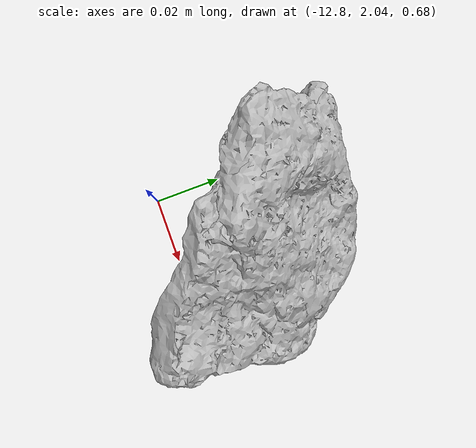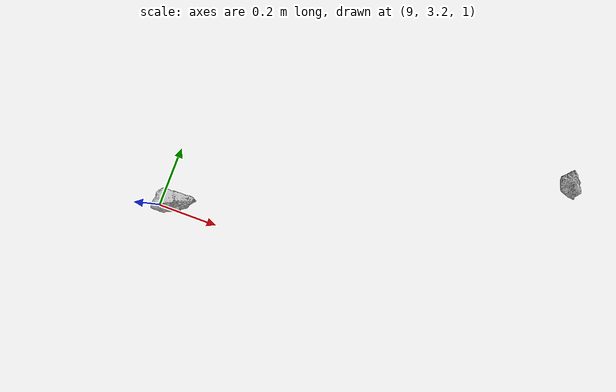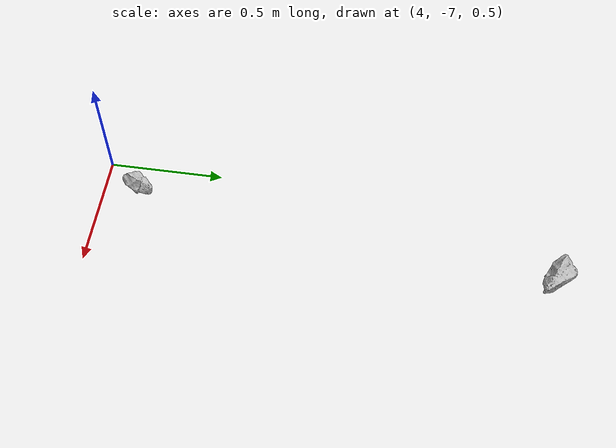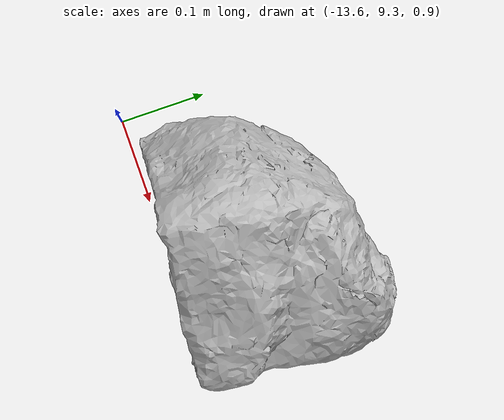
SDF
<sdf version="1.7">
 <world name="marsyard">
  <gravity>0 0 -9.81</gravity>
  <physics name="dart_physics" type="ignored">
   <max_step_size>0.003</max_step_size>
   <real_time_update_rate>333</real_time_update_rate>
   <real_time_factor>1.0</real_time_factor>
  </physics>
  <plugin filename="ignition-gazebo-physics-system" name="ignition::gazebo::systems::Physics"/>
  <plugin filename="ignition-gazebo-user-commands-system" name="ignition::gazebo::systems::UserCommands"/>
  <plugin filename="ignition-gazebo-scene-broadcaster-system" name="ignition::gazebo::systems::SceneBroadcaster"/>
  <plugin filename="ignition-gazebo-contact-system" name="ignition::gazebo::systems::Contact"/>
  <plugin filename="ignition-gazebo-sensors-system" name="ignition::gazebo::systems::Sensors">
   <render_engine>ogre2</render_engine>
  </plugin>
  <plugin filename="ignition-gazebo-imu-system" name="ignition::gazebo::systems::Imu"/>
  <plugin filename="ignition-gazebo-magnetometer-system" name="ignition::gazebo::systems::Magnetometer"/>
  <scene>
   <ambient>0.95 0.95 0.95 1</ambient>
   <background>0.70 0.70 0.70 1</background>
   <shadows>false</shadows>
  </scene>
  <light type="directional" name="sun">
   <cast_shadows>false</cast_shadows>
   <pose>0 0 30 0 0 0</pose>
   <diffuse>1 1 1 1</diffuse>
   <specular>0.15 0.15 0.15 1</specular>
   <direction>-0.35 0.1 -0.93</direction>
  </light>
  <model name="Rock_1">
   <static>true</static>
   <pose>9.0192 3.2246 0.9590 0.0000 0.0000 0.3382</pose>
   <link name="link">
    <visual name="visual">
     <geometry><mesh><uri>package://rock_generator/rocks_ws/rock_6/meshes/rock_6.obj</uri></mesh></geometry>
    </visual>
   </link>
  </model>
  <model name="Rock_2">
   <static>true</static>
   <pose>-13.4096 9.3016 1.0236 0.0000 0.0000 -0.0558</pose>
   <link name="link">
    <visual name="visual">
     <geometry><mesh><uri>package://rock_generator/rocks_ws/rock_3/meshes/rock_3.obj</uri></mesh></geometry>
    </visual>
   </link>
  </model>
  <model name="Rock_3">
   <static>true</static>
   <pose>-2.0096 -1.0788 1.0843 0.0000 0.0000 1.3418</pose>
   <link name="link">
    <visual name="visual">
     <geometry><mesh><uri>package://rock_generator/rocks_ws/rock_6/meshes/rock_6.obj</uri></mesh></geometry>
    </visual>
   </link>
  </model>
  <model name="Rock_5">
   <static>true</static>
   <pose>-1.1606 7.5692 1.3349 0.0000 0.0000 -1.1639</pose>
   <link name="link">
    <visual name="visual">
     <geometry><mesh><uri>package://rock_generator/rocks_ws/rock_5/meshes/rock_5.obj</uri></mesh></geometry>
    </visual>
    <collision name="collision">
     <geometry><mesh><uri>package://rock_generator/rocks_ws/rock_5/meshes/rock_5.obj</uri></mesh></geometry>
    </collision>
   </link>
  </model>
  <model name="Rock_6">
   <static>true</static>
   <pose>-12.7742 2.0666 0.7209 0.0000 0.0000 -0.7625</pose>
   <link name="link">
    <visual name="visual">
     <geometry><mesh><uri>package://rock_generator/rocks_ws/rock_5/meshes/rock_5.obj</uri></mesh></geometry>
    </visual>
   </link>
  </model>
  <model name="Rock_8">
   <static>true</static>
   <pose>5.3692 6.2884 1.8276 0.0000 0.0000 -2.7009</pose>
   <link name="link">
    <visual name="visual">
     <geometry><mesh><uri>package://rock_generator/rocks_ws/rock_1/meshes/rock_1.obj</uri></mesh></geometry>
    </visual>
    <collision name="collision">
     <geometry><mesh><uri>package://rock_generator/rocks_ws/rock_1/meshes/rock_1.obj</uri></mesh></geometry>
    </collision>
   </link>
  </model>
  <model name="Rock_9">
   <static>true</static>
   <pose>10.1233 3.6471 1.3257 0.0000 0.0000 1.9960</pose>
   <link name="link">
    <visual name="visual">
     <geometry><mesh><uri>package://rock_generator/rocks_ws/rock_5/meshes/rock_5.obj</uri></mesh></geometry>
    </visual>
    <collision name="collision">
     <geometry><mesh><uri>package://rock_generator/rocks_ws/rock_5/meshes/rock_5.obj</uri></mesh></geometry>
    </collision>
   </link>
  </model>
  <model name="Rock_10">
   <static>true</static>
   <pose>-7.7688 -4.3066 1.1552 0.0000 0.0000 -2.7008</pose>
   <link name="link">
    <visual name="visual">
     <geometry><mesh><uri>package://rock_generator/rocks_ws/rock_5/meshes/rock_5.obj</uri></mesh></geometry>
    </visual>
    <collision name="collision">
     <geometry><mesh><uri>package://rock_generator/rocks_ws/rock_5/meshes/rock_5.obj</uri></mesh></geometry>
    </collision>
   </link>
  </model>
  <model name="Rock_12">
   <static>true</static>
   <pose>4.1120 -6.8484 0.5484 0.0000 0.0000 1.0657</pose>
   <link name="link">
    <visual name="visual">
     <geometry><mesh><uri>package://rock_generator/rocks_ws/rock_6/meshes/rock_6.obj</uri></mesh></geometry>
    </visual>
    <collision name="collision">
     <geometry><mesh><uri>package://rock_generator/rocks_ws/rock_6/meshes/rock_6.obj</uri></mesh></geometry>
    </collision>
   </link>
  </model>
  <model name="Rock_13">
   <static>true</static>
   <pose>4.8701 -5.2026 1.4409 0.0000 0.0000 -0.5891</pose>
   <link name="link">
    <visual name="visual">
     <geometry><mesh><uri>package://rock_generator/rocks_ws/rock_6/meshes/rock_6.obj</uri></mesh></geometry>
    </visual>
    <collision name="collision">
     <geometry><mesh><uri>package://rock_generator/rocks_ws/rock_6/meshes/rock_6.obj</uri></mesh></geometry>
    </collision>
   </link>
  </model>
 </world>
</sdf>
